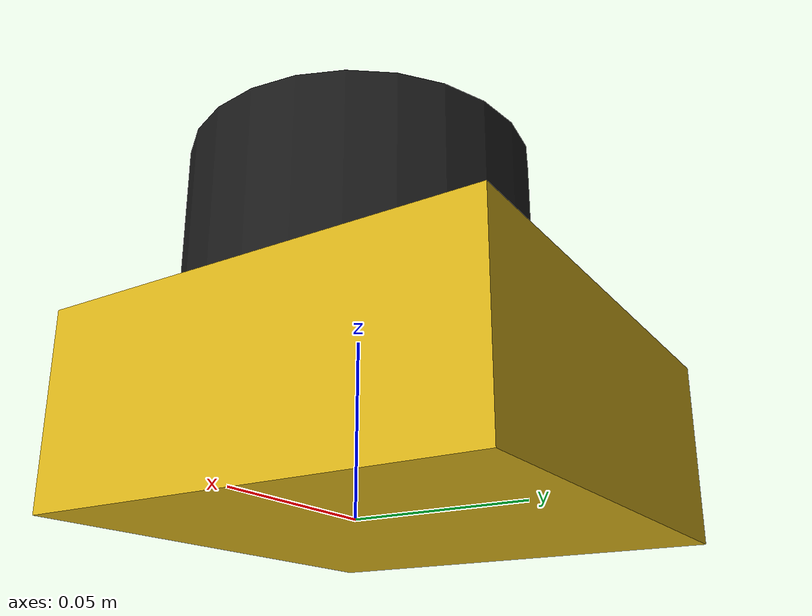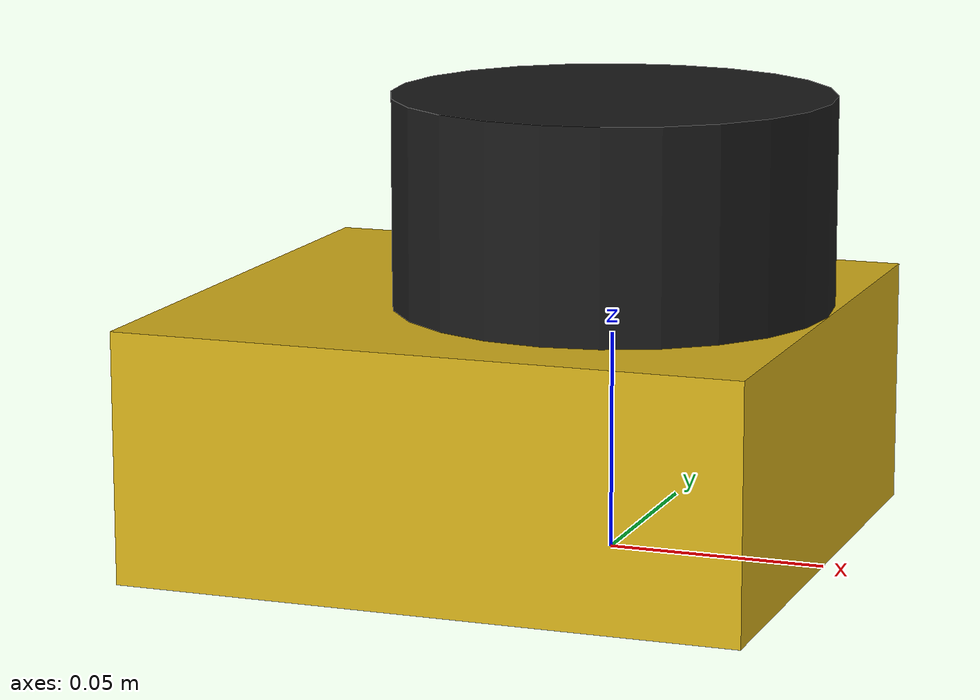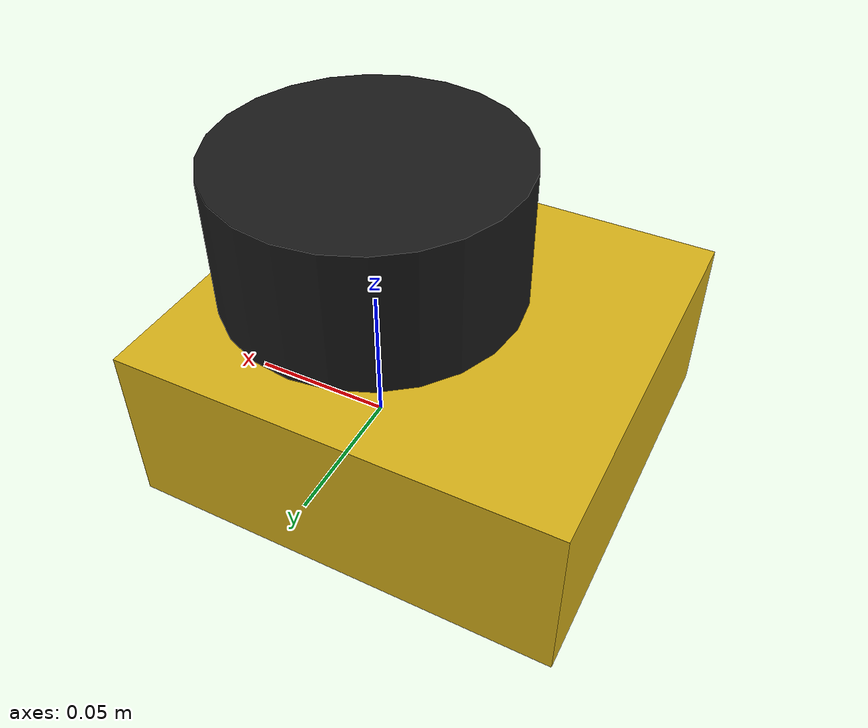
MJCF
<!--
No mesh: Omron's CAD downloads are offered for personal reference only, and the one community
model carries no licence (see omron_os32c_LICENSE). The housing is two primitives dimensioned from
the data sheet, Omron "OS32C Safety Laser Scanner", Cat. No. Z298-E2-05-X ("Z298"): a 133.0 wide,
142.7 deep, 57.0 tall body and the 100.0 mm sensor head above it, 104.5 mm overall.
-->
<mujoco model="omron_os32c">
  <compiler angle="radian" autolimits="true"/>

  <asset>
    <material name="omron_os32c_mat_0" rgba="0.85 0.7 0.1 1"/>
    <material name="omron_os32c_mat_1" rgba="0.1 0.1 0.1 1"/>
  </asset>

  <worldbody>
    <body name="mount">
      <inertial pos="-0.02135 0 0.05225" mass="1.3" diaginertia="0.0030993 0.003389 0.0041223"/>
      <geom name="omron_os32c_visual_0" type="box" pos="-0.02135 0 0.0285" size="0.07135 0.0665 0.0285" material="omron_os32c_mat_0"
            contype="0" conaffinity="0"/>
      <geom name="omron_os32c_visual_1" type="cylinder" pos="0 0 0.08075" size="0.05 0.02375" material="omron_os32c_mat_1"
            contype="0" conaffinity="0"/>
      <!-- The same primitives, as the collision geometry. -->
      <geom name="omron_os32c_collision_0" type="box" pos="-0.02135 0 0.0285" size="0.07135 0.0665 0.0285" group="3"/>
      <geom name="omron_os32c_collision_1" type="cylinder" pos="0 0 0.08075" size="0.05 0.02375" group="3"/>
      <!-- The scan plane, 67.0 mm above the bottom face (Z298 p. 5, 8), on the head's axis.
           Keep in step with the manifest's `frames:` entry. -->
      <site name="scan" pos="0 0 0.067" size="0.005"/>
    </body>
  </worldbody>
</mujoco>
